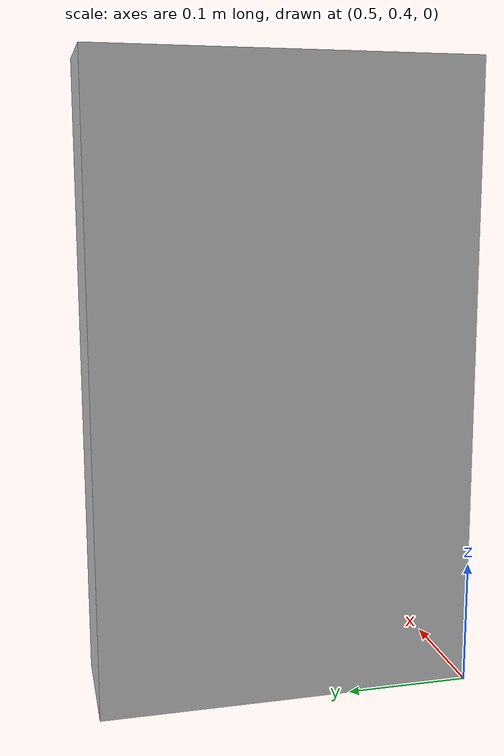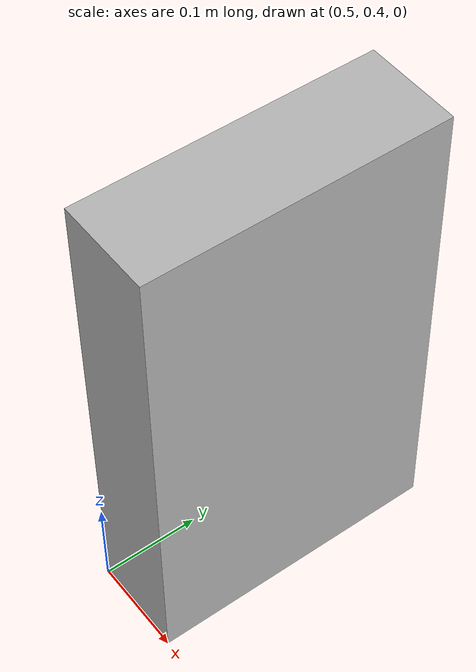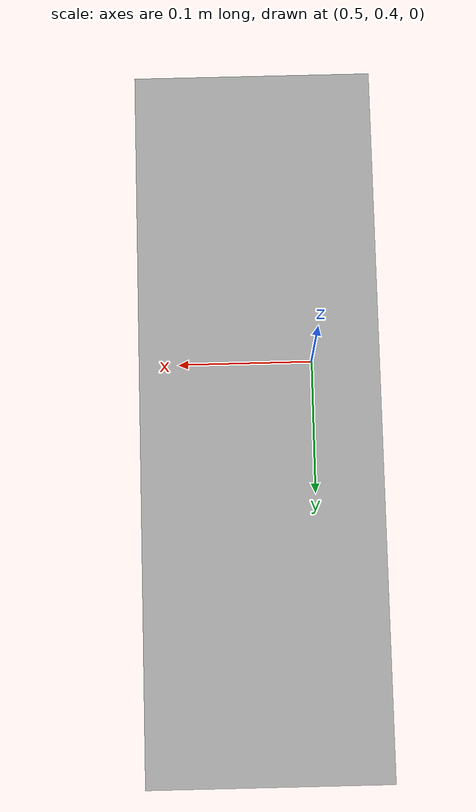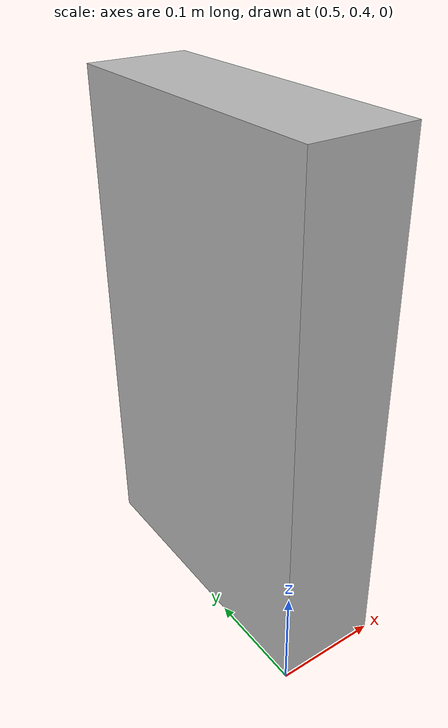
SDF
<?xml version="1.0"?>
<sdf version="1.6">
  <model name="box_a">
    <pose>0.55 0.55 0.25 0 0 0</pose>
    <static>true</static>
    <link name="link">
      <collision name="collision">
        <geometry>
          <box>
            <size>0.1 0.3 0.5</size>
          </box>
        </geometry>
      </collision>
      <visual name="visual">
        <geometry>
          <box>
            <size>0.1 0.3 0.5</size>
          </box>
        </geometry>
      </visual>
    </link>
  </model>
</sdf>
